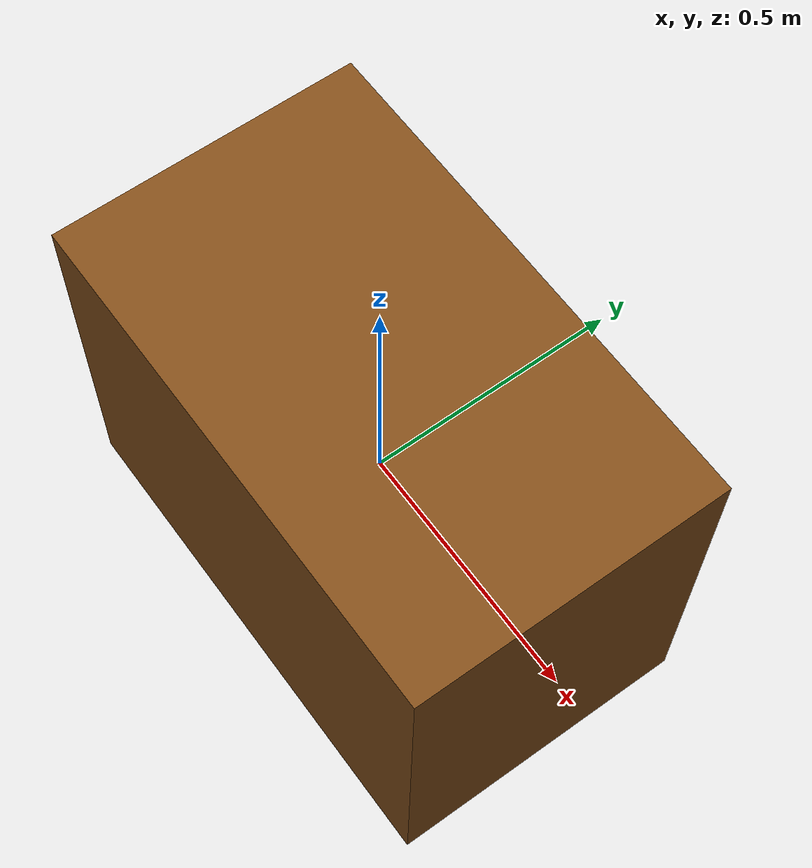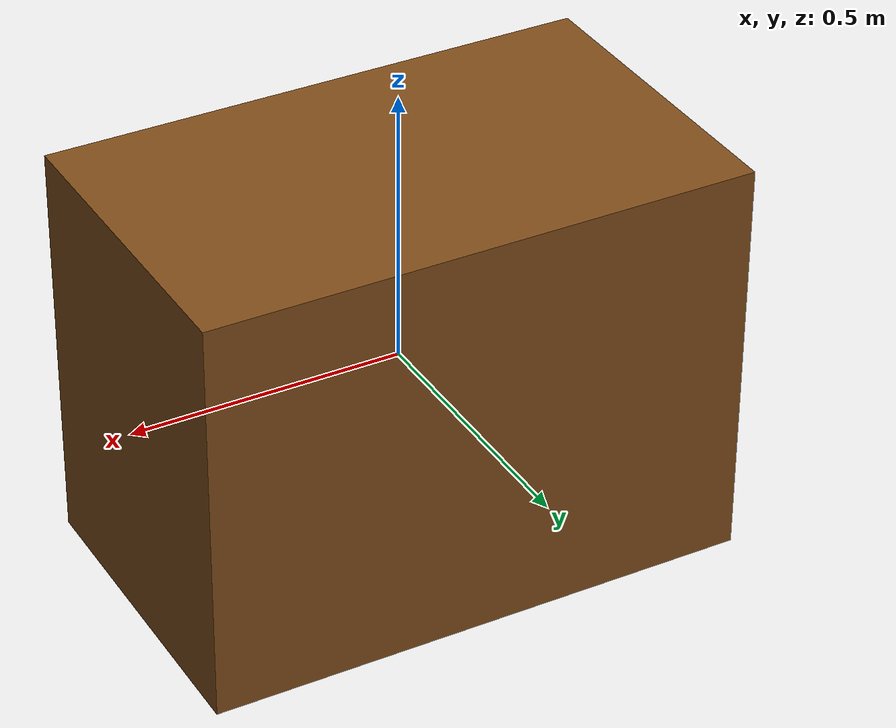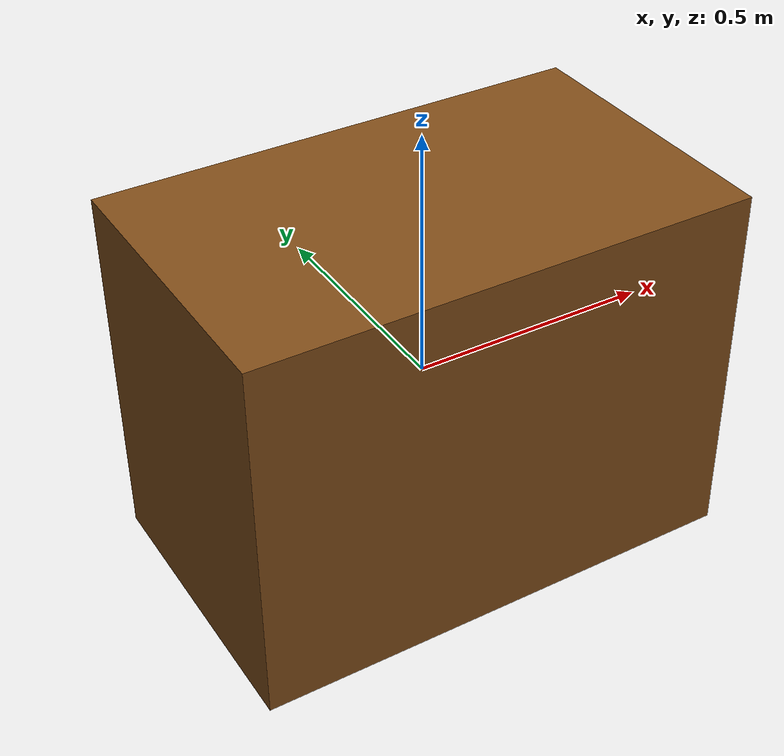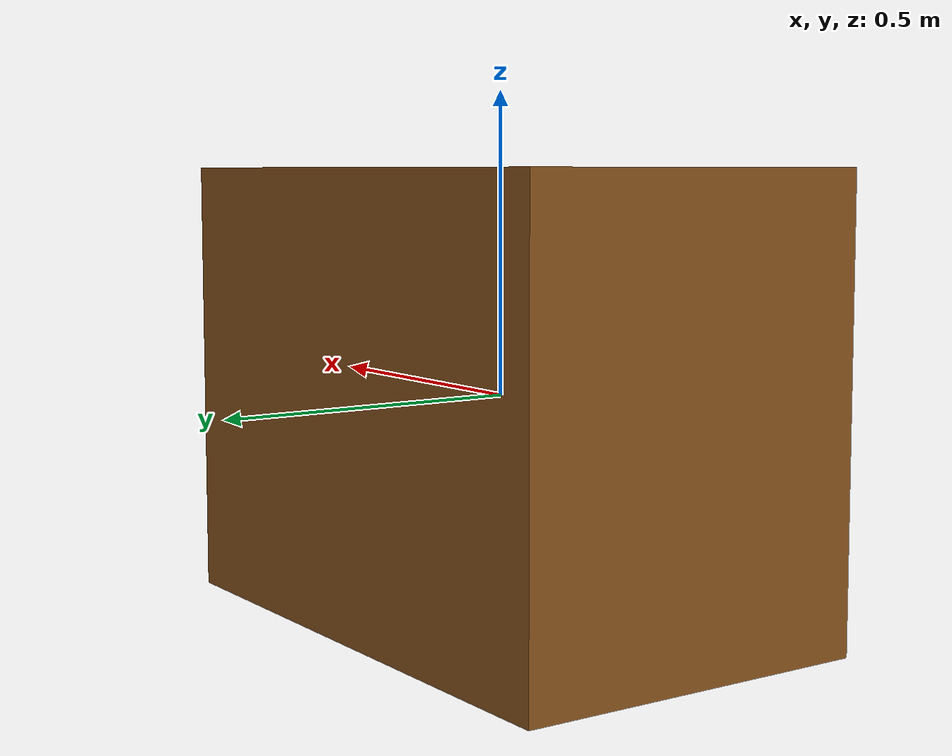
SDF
<?xml version="1.0" ?>
<sdf version="1.7">
  <model name="simple_table">
    <static>true</static>

    <link name="link">
      <pose>0 0 0 0 0 0</pose>

      <collision name="collision">
        <geometry>
          <box>
            <size>1.0 0.6 0.75</size>
          </box>
        </geometry>
      </collision>

      <visual name="visual">
        <geometry>
          <box>
            <size>1.0 0.6 0.75</size>
          </box>
        </geometry>
        <material>
          <ambient>0.5 0.3 0.1 1</ambient>
        </material>
      </visual>
    </link>
  </model>
</sdf>
